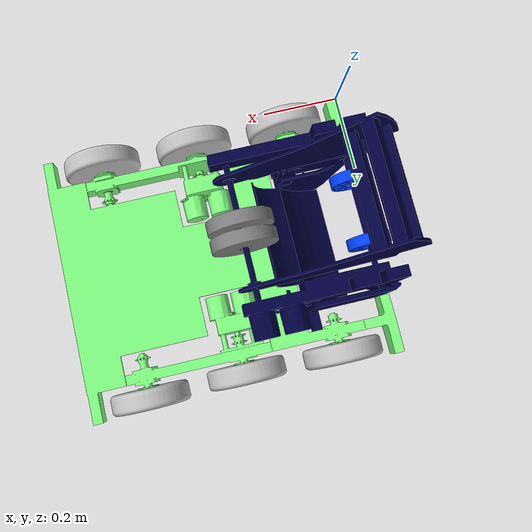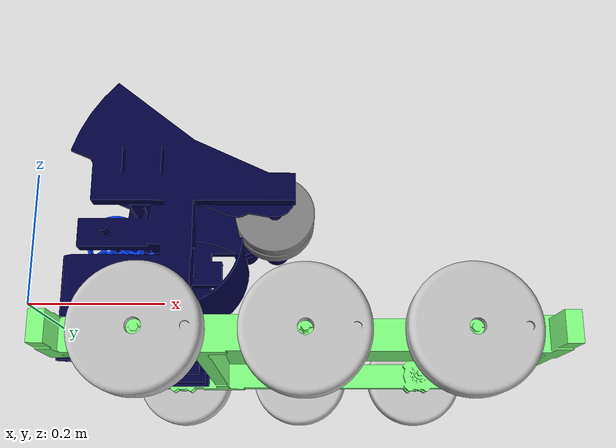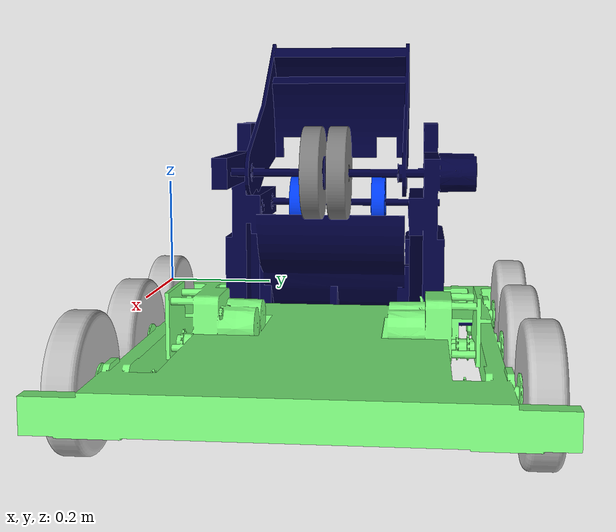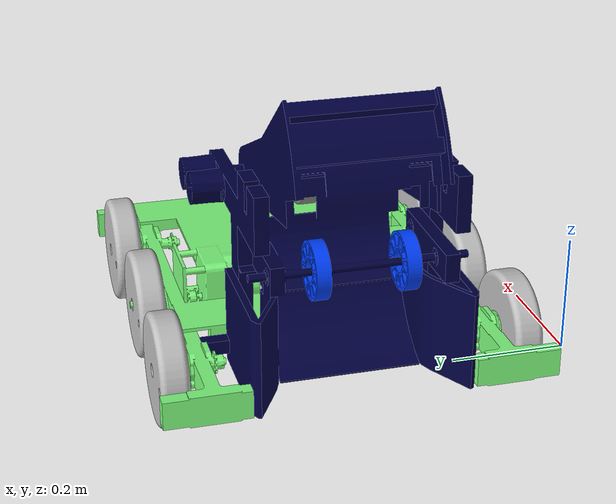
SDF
<?xml version="1.0" encoding="utf-8"?>
<sdf version="1.5">
  <model name="SimBot2022">
    <pose>0 0 -0.00634999999999991 0 0 0</pose>
    <link name="Frame">
      <gravity>1</gravity>
      <self_collide>0</self_collide>
      <pose>0.444404132234015 0.349249998947296 -0.0121442437482689 1.5707963267949 0 -1.5707963267949</pose>
      <must_be_base_link>1</must_be_base_link>
      <velocity_decay>
        <linear>0</linear>
        <angular>0</angular>
      </velocity_decay>
      <inertial>
        <mass>6.21135152696499</mass>
        <pose>0 0 0 0 0 0</pose>
        <inertia>
          <ixx>0.53568702779828</ixx>
          <ixy>0.00141729760900026</ixy>
          <ixz>0.0015637144490817</ixz>
          <iyy>0.763662622156092</iyy>
          <iyz>2.755962000102E-05</iyz>
          <izz>0.237195905553374</izz>
        </inertia>
      </inertial>
      <collision name="Frame_collision">
        <pose>-1.05270421256708E-09 -0.115673035146501 0.0380041322340155 0 0 0</pose>
        <geometry>
          <mesh>
            <scale>1 1 1</scale>
            <uri>model://SimBot2022/meshes/Frame_col.STL</uri>
          </mesh>
        </geometry>
        <surface>
          <contact>
            <ode />
          </contact>
          <friction>
            <ode>
              <mu>0</mu>
              <mu2>0</mu2>
            </ode>
          </friction>
        </surface>
      </collision>
      <visual name="Frame_visual">
        <pose>-1.05270421256708E-09 -0.115673035146501 0.0380041322340155 0 0 0</pose>
        <material>
          <ambient>0.501960784313725 1 0.501960784313725 1</ambient>
          <diffuse>0.501960784313725 1 0.501960784313725 1</diffuse>
        </material>
        <geometry>
          <mesh>
            <scale>1 1 1</scale>
            <uri>model://SimBot2022/meshes/Frame.STL</uri>
          </mesh>
        </geometry>
      </visual>
    </link>
    <link name="shooter">
      <self_collide>0</self_collide>
      <pose>0.156314850280517 0.359475305225637 0.179838492854923 1.5707963267949 0 -1.5707963267949</pose>
      <must_be_base_link>0</must_be_base_link>

      <gravity>1</gravity>
      <velocity_decay>
        <linear>0</linear>
        <angular>0</angular>
      </velocity_decay>
      <inertial>
        <mass>0.53013812705772</mass>
        <pose>0 0 0 0 0 0</pose>
        <inertia>
          <ixx>0</ixx>
          <ixy>0</ixy>
          <ixz>0</ixz>
          <iyy>0</iyy>
          <iyz>0</iyz>
          <izz>0</izz>
        </inertia>
      </inertial>

      <collision name="shooter_collision">
        <pose>0.0102253052256366 -0.307655771749693 -0.250085149719483 0 0 0</pose>
        <geometry>
          <mesh>
            <scale>1 1 1</scale>
            <uri>model://SimBot2022/meshes/shooter_col.STL</uri>
          </mesh>
        </geometry>
        <surface>
          <contact>
            <ode />
          </contact>
          <friction>
            <ode>
              <mu>0</mu>
              <mu2>0</mu2>
            </ode>
          </friction>
        </surface>
      </collision>
      <visual name="shooter_visual">
        <pose>0.0102253052256366 -0.307655771749693 -0.250085149719483 0 0 0</pose>
        <material>
          <ambient>0 0 0.250980392156863 1</ambient>
          <diffuse>0 0 0.250980392156863 1</diffuse>
        </material>
        <geometry>
          <mesh>
            <scale>1 1 1</scale>
            <uri>model://SimBot2022/meshes/shooter.STL</uri>
          </mesh>
        </geometry>
      </visual>
      <sensor name="ShooterCamera" type="camera">
        <visualize>1</visualize>
        <always_on>1</always_on>
        <pose>0.0104563713437767 0.279066737993733 0.0931638028200657 0 0.819943496172562 2.0</pose>
        <camera name="shootercamera">
          <horizontal_fov>1.5707963267949</horizontal_fov>
          <image>
            <width>640</width>
            <height>480</height>
            <format>R8G8B8</format>
          </image>
          <clip>
            <near>0.1</near>
            <far>100</far>
          </clip>
        </camera>
        <plugin name="camera1" filename="sim_camera.dll">
          <topic>~/gazebo/frc/simulator/camera/0</topic>
          <port>9000</port>
          <fps>20</fps>
          <enabled>true</enabled>
          <savepath>tmp</savepath>
          <maxframes>0</maxframes>
          <video>front.avi</video>
      </plugin>
      </sensor>
      <sensor name="IntakeCamera" type="camera">
        <visualize>1</visualize>
        <always_on>1</always_on>
        <pose>0.0104563713437772 0.114878062181823 0.0771053248601615 0 4.71238898038469 4.71238898038469</pose>
        <camera name="intakecamera">
          <horizontal_fov>1.5707963267949</horizontal_fov>
          <image>
            <width>640</width>
            <height>480</height>
            <format>R8G8B8</format>
          </image>
          <clip>
            <near>0.1</near>
            <far>100</far>
          </clip>
        </camera>
        <plugin name="camera2" filename="sim_camera.dll">
          <topic>~/gazebo/frc/simulator/camera/1</topic>
          <port>9001</port>
          <fps>20</fps>
          <enabled>true</enabled>
          <savepath>tmp</savepath>
          <maxframes>0</maxframes>
          <video>back.avi</video>
      </plugin>
      </sensor>
    </link>

    <joint name="Frame-shooter" type="fixed">
      <parent>Frame</parent>
      <child>shooter</child>
    </joint>

    <link name="IntakeWheels">
      <gravity>1</gravity>
      <self_collide>0</self_collide>
      <pose>0.0635991330417208 0.345706329943442 0.17565755976897 1.5707963267949 0 -1.5707963267949</pose>
      <must_be_base_link>0</must_be_base_link>
      <velocity_decay>
        <linear>0</linear>
        <angular>0</angular>
      </velocity_decay>
      <inertial>
        <mass>0.163527673829499</mass>
        <pose>0 0 0 0 0 0</pose>
        <inertia>
          <ixx>0</ixx>
          <ixy>0</ixy>
          <ixz>0</ixz>
          <iyy>0</iyy>
          <iyz>0</iyz>
          <izz>0</izz>
        </inertia>
      </inertial>
      <collision name="IntakeWheels_collision">
        <pose>-0.00354367005655759 -0.30347483866374 -0.342800866958279 0 0 0</pose>
        <geometry>
          <mesh>
            <scale>1 1 1</scale>
            <uri>model://SimBot2022/meshes/IntakeWheels_col.STL</uri>
          </mesh>
        </geometry>
        <surface>
          <contact>
            <ode />
          </contact>
          <friction>
            <ode>
              <mu>0</mu>
              <mu2>0</mu2>
            </ode>
          </friction>
        </surface>
      </collision>
      <visual name="IntakeWheels_visual">
        <pose>-0.00354367005655759 -0.30347483866374 -0.342800866958279 0 0 0</pose>
        <material>
          <ambient>0 0.250980392156863 1 1</ambient>
          <diffuse>0 0.250980392156863 1 1</diffuse>
        </material>
        <geometry>
          <mesh>
            <scale>1 1 1</scale>
            <uri>model://SimBot2022/meshes/IntakeWheels.STL</uri>
          </mesh>
        </geometry>
      </visual>
    </link>

    <joint name="shooter-IntakeWheels" type="revolute">
      <parent>shooter</parent>
      <child>IntakeWheels</child>
      <pose>0 0 0 0 0 0</pose>
      <axis>
        <xyz>1 0 0</xyz>
        <dynamics>
          <damping>2</damping>
          <friction>1</friction>
        </dynamics>
        <limit>
          <effort>0</effort>
        </limit>
      </axis>
    </joint>

    <link name="ShooterWheels">
      <gravity>1</gravity>
      <self_collide>0</self_collide>
      <pose>0.354572546541651 0.348528163787237 0.250951615137794 1.5707963267949 0 -1.5707963267949</pose>
      <must_be_base_link>0</must_be_base_link>
      <velocity_decay>
        <linear>0</linear>
        <angular>0</angular>
      </velocity_decay>
      <inertial>
        <mass>0.178595631528389</mass>
        <pose>0 0 0 0 0 0</pose>
        <inertia>
          <ixx>0</ixx>
          <ixy>0</ixy>
          <ixz>0</ixz>
          <iyy>0</iyy>
          <iyz>0</iyz>
          <izz>0</izz>
        </inertia>
      </inertial>
      <collision name="ShooterWheels_collision">
        <pose>-0.000721836212762695 -0.378768894032564 -0.0518274534583495 0 0 0</pose>
        <geometry>
          <mesh>
            <scale>1 1 1</scale>
            <uri>model://SimBot2022/meshes/ShooterWheels_col.STL</uri>
          </mesh>
        </geometry>
        <surface>
          <contact>
            <ode />
          </contact>
          <friction>
            <ode>
              <mu>0</mu>
              <mu2>0</mu2>
            </ode>
          </friction>
        </surface>
      </collision>
      <visual name="ShooterWheels_visual">
        <pose>-0.000721836212762695 -0.378768894032564 -0.0518274534583495 0 0 0</pose>
        <material>
          <ambient>0.501960784313725 0.501960784313725 0.501960784313725 1</ambient>
          <diffuse>0.501960784313725 0.501960784313725 0.501960784313725 1</diffuse>
        </material>
        <geometry>
          <mesh>
            <scale>1 1 1</scale>
            <uri>model://SimBot2022/meshes/ShooterWheels.STL</uri>
          </mesh>
        </geometry>
      </visual>
    </link>
    <joint name="shooter-ShooterWheels" type="revolute">
      <parent>shooter</parent>
      <child>ShooterWheels</child>

      <pose>0 0 0 0 6.28318530717958 3.14159265358979</pose>
      <axis>
        <xyz>1 0 0</xyz>
        <dynamics>
          <damping>2</damping>
          <friction>1</friction>
        </dynamics>
        <limit>
          <effort>0</effort>
        </limit>
      </axis>
    </joint>

    <link name="LFWheel">
      <gravity>1</gravity>
      <self_collide>0</self_collide>
      <pose>0.660444300197691 0.665149209940693 -0.0238760000000006 1.5707963267949 0 -1.5707963267949</pose>
      <must_be_base_link>0</must_be_base_link>
      <velocity_decay>
        <linear>0</linear>
        <angular>0</angular>
      </velocity_decay>
      <inertial>
        <mass>0.255325203825891</mass>
        <pose>0 0 0 0 0 0</pose>
        <inertia>
          <ixx>0</ixx>
          <ixy>0</ixy>
          <ixz>0</ixz>
          <iyy>0</iyy>
          <iyz>0</iyz>
          <izz>0</izz>
        </inertia>
      </inertial>
      <collision name="LFWheel_collision">
        <pose>0.315899209940693 -0.10394127889477 0.254044300197691 0 0 0</pose>
        <geometry>
          <mesh>
            <scale>1 1 1</scale>
            <uri>model://SimBot2022/meshes/LFWheel_col.STL</uri>
          </mesh>
        </geometry>
        <surface>
          <contact>
          <ode>
            <max_vel>0.1</max_vel>
            <soft_cfm>0.8</soft_cfm>
            <soft_erp>0.8</soft_erp>
            <kd>200</kd>
            <kp>50000</kp>
            <min_depth>0.0001</min_depth>
          </ode>
          </contact>
          <friction>
            <ode>
              <mu>2</mu>
              <mu2>2</mu2>
            </ode>
          </friction>
        </surface>
      </collision>
      <visual name="LFWheel_visual">
        <pose>0.315899209940693 -0.10394127889477 0.254044300197691 0 0 0</pose>
        <material>
          <ambient>0.752941176470588 0.752941176470588 0.752941176470588 1</ambient>
          <diffuse>0.752941176470588 0.752941176470588 0.752941176470588 1</diffuse>
        </material>
        <geometry>
          <mesh>
            <scale>1 1 1</scale>
            <uri>model://SimBot2022/meshes/LFWheel.STL</uri>
          </mesh>
        </geometry>
      </visual>
    </link>
    <joint name="Frame-LFWheel" type="revolute">
      <parent>Frame</parent>
      <child>LFWheel</child>
      <pose>0 0 0 0 0 0</pose>
      <axis>
        <xyz>-1 0 0</xyz>
        <dynamics>
          <damping>2</damping>
          <friction>1</friction>
        </dynamics>
        <limit>
          <effort>50</effort>
        </limit>
      </axis>
    </joint>
    <link name="LCWheel">
      <gravity>1</gravity>
      <self_collide>0</self_collide>
      <pose>0.406444300197691 0.660386709940693 -0.0238760000000001 1.5707963267949 0 -1.5707963267949</pose>
      <must_be_base_link>0</must_be_base_link>
      <velocity_decay>
        <linear>0</linear>
        <angular>0</angular>
      </velocity_decay>
      <inertial>
        <mass>0.255325203825891</mass>
        <pose>0 0 0 0 0 0</pose>
        <inertia>
          <ixx>0</ixx>
          <ixy>0</ixy>
          <ixz>0</ixz>
          <iyy>0</iyy>
          <iyz>0</iyz>
          <izz>0</izz>
        </inertia>
      </inertial>
      <collision name="LCWheel_collision">
        <pose>0.311136709940693 -0.10394127889477 4.43001976909582E-05 0 0 0</pose>
        <geometry>
          <mesh>
            <scale>1 1 1</scale>
            <uri>model://SimBot2022/meshes/LCWheel_col.STL</uri>
          </mesh>
        </geometry>
        <surface>
          <contact>
          <ode>
            <max_vel>0.1</max_vel>
            <soft_cfm>0.8</soft_cfm>
            <soft_erp>0.8</soft_erp>
            <kd>200</kd>
            <kp>50000</kp>
            <min_depth>0.0001</min_depth>
          </ode>
          </contact>
          <friction>
            <ode>
              <mu>2</mu>
              <mu2>2</mu2>
            </ode>
          </friction>
        </surface>
      </collision>
      <visual name="LCWheel_visual">
        <pose>0.311136709940693 -0.10394127889477 4.43001976909582E-05 0 0 0</pose>
        <material>
          <ambient>0.752941176470588 0.752941176470588 0.752941176470588 1</ambient>
          <diffuse>0.752941176470588 0.752941176470588 0.752941176470588 1</diffuse>
        </material>
        <geometry>
          <mesh>
            <scale>1 1 1</scale>
            <uri>model://SimBot2022/meshes/LCWheel.STL</uri>
          </mesh>
        </geometry>
      </visual>
    </link>
    <joint name="Frame-LCWheel" type="revolute">
      <parent>Frame</parent>
      <child>LCWheel</child>
      <pose>-2.22044604925031E-16 1.38777878078145E-17 4.43001976909582E-05 0 0 0</pose>
      <axis>
        <xyz>-1 0 0</xyz>
        <dynamics>
          <damping>2</damping>
          <friction>1</friction>
        </dynamics>
        <limit>
          <effort>50</effort>
        </limit>
      </axis>
    </joint>
    <link name="LBWheel">
      <gravity>1</gravity>
      <self_collide>0</self_collide>
      <pose>0.152444300197691 0.665149209940693 -0.0238759999999991 1.5707963267949 0 -1.5707963267949</pose>
      <must_be_base_link>0</must_be_base_link>
      <velocity_decay>
        <linear>0</linear>
        <angular>0</angular>
      </velocity_decay>
      <inertial>
        <mass>0.255325203825891</mass>
        <pose>0 0 0 0 0 0</pose>
        <inertia>
          <ixx>0</ixx>
          <ixy>0</ixy>
          <ixz>0</ixz>
          <iyy>0</iyy>
          <iyz>0</iyz>
          <izz>0</izz>
        </inertia>
      </inertial>
      <collision name="LBWheel_collision">
        <pose>0.315899209940693 -0.103941278894771 -0.253955699802309 0 0 0</pose>
        <geometry>
          <mesh>
            <scale>1 1 1</scale>
            <uri>model://SimBot2022/meshes/LBWheel_col.STL</uri>
          </mesh>
        </geometry>
        <surface>
          <contact>
          <ode>
            <max_vel>0.1</max_vel>
            <soft_cfm>0.8</soft_cfm>
            <soft_erp>0.8</soft_erp>
            <kd>200</kd>
            <kp>50000</kp>
            <min_depth>0.0001</min_depth>
          </ode>
          </contact>
          <friction>
            <ode>
              <mu>2</mu>
              <mu2>2</mu2>
            </ode>
          </friction>
        </surface>
      </collision>
      <visual name="LBWheel_visual">
        <pose>0.315899209940693 -0.103941278894771 -0.253955699802309 0 0 0</pose>
        <material>
          <ambient>0.752941176470588 0.752941176470588 0.752941176470588 1</ambient>
          <diffuse>0.752941176470588 0.752941176470588 0.752941176470588 1</diffuse>
        </material>
        <geometry>
          <mesh>
            <scale>1 1 1</scale>
            <uri>model://SimBot2022/meshes/LBWheel.STL</uri>
          </mesh>
        </geometry>
      </visual>
    </link>
    <joint name="Frame-LBWheel" type="revolute">
      <parent>Frame</parent>
      <child>LBWheel</child>
      <pose>-2.22044604925031E-16 -1.04083408558608E-15 4.43001976915269E-05 0 0 0</pose>
      <axis>
        <xyz>-1 0 0</xyz>
        <dynamics>
          <damping>2</damping>
          <friction>1</friction>
        </dynamics>
        <limit>
          <effort>50</effort>
        </limit>
      </axis>
    </joint>
    <link name="RFWheel">
      <gravity>1</gravity>
      <self_collide>0</self_collide>
      <pose>0.660355699802309 0.0333507900593075 -0.0238760000000013 1.5707963267949 0 -1.5707963267949</pose>
      <must_be_base_link>0</must_be_base_link>
      <velocity_decay>
        <linear>0</linear>
        <angular>0</angular>
      </velocity_decay>
      <inertial>
        <mass>0.255325203825891</mass>
        <pose>0 0 0 0 0 0</pose>
        <inertia>
          <ixx>0</ixx>
          <ixy>0</ixy>
          <ixz>0</ixz>
          <iyy>0</iyy>
          <iyz>0</iyz>
          <izz>0</izz>
        </inertia>
      </inertial>
      <collision name="RFWheel_collision">
        <pose>-0.315899209940693 -0.103941278894769 0.253955699802309 0 0 0</pose>
        <geometry>
          <mesh>
            <scale>1 1 1</scale>
            <uri>model://SimBot2022/meshes/RFWheel_col.STL</uri>
          </mesh>
        </geometry>
        <surface>
          <contact>
          <ode>
            <max_vel>0.1</max_vel>
            <soft_cfm>0.8</soft_cfm>
            <soft_erp>0.8</soft_erp>
            <kd>200</kd>
            <kp>50000</kp>
            <min_depth>0.0001</min_depth>
          </ode>
          </contact>
          <friction>
            <ode>
              <mu>2</mu>
              <mu2>2</mu2>
            </ode>
          </friction>
        </surface>
      </collision>
      <visual name="RFWheel_visual">
        <pose>-0.315899209940693 -0.103941278894769 0.253955699802309 0 0 0</pose>
        <material>
          <ambient>0.752941176470588 0.752941176470588 0.752941176470588 1</ambient>
          <diffuse>0.752941176470588 0.752941176470588 0.752941176470588 1</diffuse>
        </material>
        <geometry>
          <mesh>
            <scale>1 1 1</scale>
            <uri>model://SimBot2022/meshes/RFWheel.STL</uri>
          </mesh>
        </geometry>
      </visual>
    </link>
    <joint name="Frame-RFWheel" type="revolute">
      <parent>Frame</parent>
      <child>RFWheel</child>
      <pose>0 0 0 0 0 0</pose>
      <axis>
        <xyz>-1 0 0</xyz>
        <dynamics>
          <damping>2</damping>
          <friction>1</friction>
        </dynamics>
        <limit>
          <effort>50</effort>
        </limit>
      </axis>
    </joint>
    <link name="RCWheel">
      <gravity>1</gravity>
      <self_collide>0</self_collide>
      <pose>0.406355699802309 0.0381132900593072 -0.0238760000000001 1.5707963267949 0 -1.5707963267949</pose>
      <must_be_base_link>0</must_be_base_link>
      <velocity_decay>
        <linear>0</linear>
        <angular>0</angular>
      </velocity_decay>
      <inertial>
        <mass>0.255325203825891</mass>
        <pose>0 0 0 0 0 0</pose>
        <inertia>
          <ixx>0</ixx>
          <ixy>0</ixy>
          <ixz>0</ixz>
          <iyy>0</iyy>
          <iyz>0</iyz>
          <izz>0</izz>
        </inertia>
      </inertial>
      <collision name="RCWheel_collision">
        <pose>-0.311136709940693 -0.10394127889477 -4.43001976909449E-05 0 0 0</pose>
        <geometry>
          <mesh>
            <scale>1 1 1</scale>
            <uri>model://SimBot2022/meshes/RCWheel_col.STL</uri>
          </mesh>
        </geometry>
        <surface>
          <contact>
          <ode>
            <max_vel>0.1</max_vel>
            <soft_cfm>0.8</soft_cfm>
            <soft_erp>0.8</soft_erp>
            <kd>200</kd>
            <kp>50000</kp>
            <min_depth>0.0001</min_depth>
          </ode>
          </contact>
          <friction>
            <ode>
              <mu>2</mu>
              <mu2>2</mu2>
            </ode>
          </friction>
        </surface>
      </collision>
      <visual name="RCWheel_visual">
        <pose>-0.311136709940693 -0.10394127889477 -4.43001976909449E-05 0 0 0</pose>
        <material>
          <ambient>0.752941176470588 0.752941176470588 0.752941176470588 1</ambient>
          <diffuse>0.752941176470588 0.752941176470588 0.752941176470588 1</diffuse>
        </material>
        <geometry>
          <mesh>
            <scale>1 1 1</scale>
            <uri>model://SimBot2022/meshes/RCWheel.STL</uri>
          </mesh>
        </geometry>
      </visual>
    </link>
    <joint name="Frame-RCWheel" type="revolute">
      <parent>Frame</parent>
      <child>RCWheel</child>
      <pose>0 0 0 0 0 0</pose>
      <axis>
        <xyz>-1 0 0</xyz>
        <dynamics>
          <damping>2</damping>
          <friction>1</friction>
        </dynamics>
        <limit>
          <effort>50</effort>
        </limit>
      </axis>
    </joint>
    <link name="RBWheel">
      <gravity>1</gravity>
      <self_collide>0</self_collide>
      <pose>0.15235569980231 0.0333507900593071 -0.0238759999999991 1.5707963267949 0 -1.5707963267949</pose>
      <must_be_base_link>0</must_be_base_link>
      <velocity_decay>
        <linear>0</linear>
        <angular>0</angular>
      </velocity_decay>
      <inertial>
        <mass>0.255325203825891</mass>
        <pose>0 0 0 0 0 0</pose>
        <inertia>
          <ixx>0</ixx>
          <ixy>0</ixy>
          <ixz>0</ixz>
          <iyy>0</iyy>
          <iyz>0</iyz>
          <izz>0</izz>
        </inertia>
      </inertial>
      <collision name="RBWheel_collision">
        <pose>-0.315899209940693 -0.103941278894771 -0.25404430019769 0 0 0</pose>
        <geometry>
          <mesh>
            <scale>1 1 1</scale>
            <uri>model://SimBot2022/meshes/RBWheel_col.STL</uri>
          </mesh>
        </geometry>
        <surface>
          <contact>
          <ode>
            <max_vel>0.1</max_vel>
            <soft_cfm>0.8</soft_cfm>
            <soft_erp>0.8</soft_erp>
            <kd>200</kd>
            <kp>50000</kp>
            <min_depth>0.0001</min_depth>
          </ode>
          </contact>
          <friction>
            <ode>
              <mu>2</mu>
              <mu2>2</mu2>
            </ode>
          </friction>
        </surface>
      </collision>
      <visual name="RBWheel_visual">
        <pose>-0.315899209940693 -0.103941278894771 -0.25404430019769 0 0 0</pose>
        <material>
          <ambient>0.752941176470588 0.752941176470588 0.752941176470588 1</ambient>
          <diffuse>0.752941176470588 0.752941176470588 0.752941176470588 1</diffuse>
        </material>
        <geometry>
          <mesh>
            <scale>1 1 1</scale>
            <uri>model://SimBot2022/meshes/RBWheel.STL</uri>
          </mesh>
        </geometry>
      </visual>
    </link>
    <joint name="Frame-RBWheel" type="revolute">
      <parent>Frame</parent>
      <child>RBWheel</child>
      <pose>0 0 0 0 0 0</pose>
      <axis>
        <xyz>-1 0 0</xyz>
        <dynamics>
          <damping>2</damping>
          <friction>1</friction>
        </dynamics>
        <limit>
          <effort>50</effort>
        </limit>
      </axis>
    </joint>
    <plugin name="shooter-IntakeWheels_motor" filename="sim_motor.dll">
      <joint>shooter-IntakeWheels</joint>
      <topic>~/gazebo/frc/simulator/motor/7</topic>
      <multiplier>50</multiplier>
    </plugin>
    <plugin name="shooter-ShooterWheels_motor" filename="sim_motor.dll">
      <joint>shooter-ShooterWheels</joint>
      <topic>~/gazebo/frc/simulator/motor/8</topic>
      <multiplier>50</multiplier>
    </plugin>

    <plugin name="clock" filename="sim_clock.dll">
      <topic>~/gazebo/frc/simulator/clock</topic>
    </plugin>

    <plugin name="Body_gyro" filename="sim_gyro.dll">
      <link>Frame</link>
      <topic>~/gazebo/frc/simulator/gyro</topic>
      <units>degrees</units>
      <axis>yaw</axis>
    </plugin>

    <plugin name="Frame-LFWheel_motor" filename="sim_motor.dll">
      <joint>Frame-LFWheel</joint>
      <topic>~/gazebo/frc/simulator/motor/1</topic>
      <multiplier>50</multiplier>
    </plugin>
    <plugin name="Frame-LCWheel_motor" filename="sim_motor.dll">
      <joint>Frame-LCWheel</joint>
      <topic>~/gazebo/frc/simulator/motor/1</topic>
      <multiplier>50</multiplier>
    </plugin>
    <plugin name="Frame-LBWheel_motor" filename="sim_motor.dll">
      <joint>Frame-LBWheel</joint>
      <topic>~/gazebo/frc/simulator/motor/1</topic>
      <multiplier>50</multiplier>
    </plugin>
    <plugin name="Frame-RFWheel_motor" filename="sim_motor.dll">
      <joint>Frame-RFWheel</joint>
      <topic>~/gazebo/frc/simulator/motor/2</topic>
      <multiplier>50</multiplier>
    </plugin>
    <plugin name="Frame-RCWheel_motor" filename="sim_motor.dll">
      <joint>Frame-RCWheel</joint>
      <topic>~/gazebo/frc/simulator/motor/2</topic>
      <multiplier>50</multiplier>
    </plugin>
    <plugin name="Frame-RBWheel_motor" filename="sim_motor.dll">
      <joint>Frame-RBWheel</joint>
      <topic>~/gazebo/frc/simulator/motor/2</topic>
      <multiplier>50</multiplier>
    </plugin>
  </model>
</sdf>
